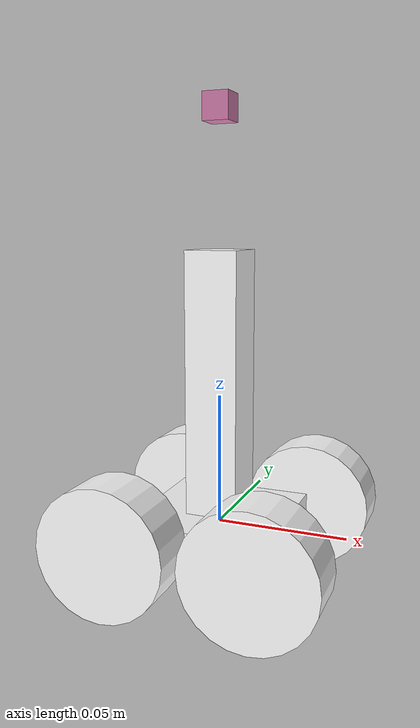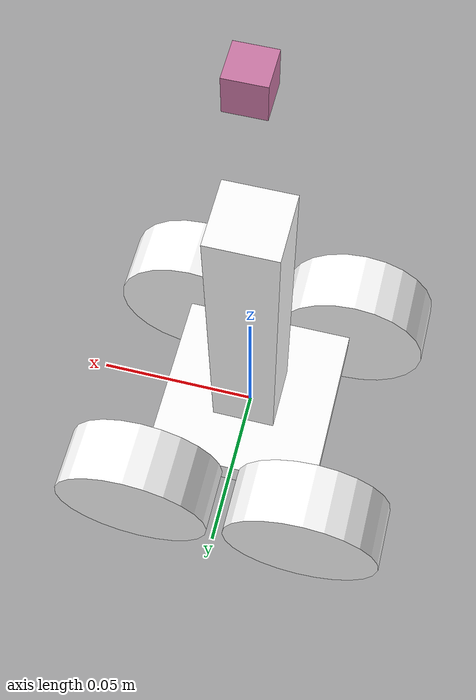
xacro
<?xml version="1.0"?>
<robot name="test_bot_2" xmlns:xacro="http://ros.org/wiki/xacro">

  <xacro:property name="base_width" value="0.055" />
  <xacro:property name="base_height" value="0.01" />
  <xacro:property name="wheel_dia" value="0.025" />
  <xacro:property name="wheel_thick" value="0.02"/>
  <xacro:property name="slider_base_height" value="0.1"/>
  <xacro:property name="slider_base_width" value="0.02"/>
  <xacro:property name="slider_height" value="0.15"/>
  <xacro:property name="slider_width" value="0.01"/>
  <xacro:property name="camera_width" value="0.01"/>
  <xacro:property name="slide_ulim" value="0.025"/>
  <xacro:property name="slide_llim" value="-0.025"/>
  <xacro:property name="cam_llim" value="-0.436332"/>
  <xacro:property name="cam_ulim" value="0.436332"/>

  <material name="white">
      <color rgba="1 1 1 1"/>
  </material>

  <xacro:macro name="default_inertial" params="mass inertia">
    <inertial>
      <mass value="${mass}" />
      <inertia ixx="${inertia}" ixy="0.0" ixz="0.0" iyy="${inertia}" iyz="0.0" izz="${inertia}" />
    </inertial>
  </xacro:macro>

  <xacro:macro name="wheel" params="prefix reflect1 reflect2 reflect3">
      <link name="${prefix}_wheel">
          <visual>
              <geometry>
                  <cylinder length="${wheel_thick}" radius="${wheel_dia}"/>
              </geometry>
              <origin xyz="${reflect3*wheel_thick/2} 0 0" rpy="0 1.57075 0"/>
              <material name="white"/>
          </visual>
          <collision>
              <geometry>
                  <cylinder length="${wheel_thick}" radius="${wheel_dia}"/>
              </geometry>
              <origin xyz="${reflect3*wheel_thick/2} 0 0" rpy="0 1.57075 0"/>
          </collision>
          <inertial>
            <mass value="1" />
            <inertia ixx="0.0001" ixy="0.0" ixz="0.0" iyy=".0001" iyz="0.0" izz=".00001" />
          </inertial>
      </link>

      <joint name="base_to_${prefix}_wheel" type="continuous">
          <parent link="base_frame"/>
          <child link="${prefix}_wheel"/>
          <origin xyz="${reflect1*base_width/2} ${reflect2*base_width/2} 0" rpy="0.0 0.0 1.57079632679"/>
      </joint>
  </xacro:macro>

  <link name="base_frame">
      <visual>
          <geometry>
              <box size="${base_width} ${base_width} ${base_height}"/>
          </geometry>
          <material name="white"/>
      </visual>
      <collision>
          <geometry>
              <box size="${base_width} ${base_width} ${base_height}"/>
          </geometry>
      </collision>
  </link>

  <xacro:wheel prefix="0" reflect1="1" reflect2="1" reflect3="1"/>
  <xacro:wheel prefix="1" reflect1="-1" reflect2="1" reflect3="1"/>
  <xacro:wheel prefix="2" reflect1="1" reflect2="-1" reflect3="-1"/>
  <xacro:wheel prefix="3" reflect1="-1" reflect2="-1" reflect3="-1"/>

  <link name = "slider_base">
      <visual>
          <geometry>
              <box size="${slider_base_width} ${slider_base_width} ${slider_base_height}"/>
          </geometry>
          <origin xyz="0.0 0.0 ${slider_base_height/2}"/>
          <material name="white"/>
      </visual>
      <collision>
          <geometry>
              <box size="${slider_base_width} ${slider_base_width} ${slider_base_height}"/>
          </geometry>
          <origin xyz="0.0 0.0 ${slider_base_height/2}"/>
      </collision>
      <inertial>
        <mass value="1" />
        <inertia ixx="0.001" ixy="0.0" ixz="0.0" iyy="0.001" iyz="0.0" izz="0.001" />
      </inertial>
  </link>

  <joint name="base_slider_base" type="fixed">
      <parent link="base_frame"/>
      <child link="slider_base"/>
      <origin xyz="0.0 0.0 ${base_height/2}"/>
  </joint>

  <link name = "camera_mount">
        <visual>
            <geometry>
                <box size="${camera_width} ${camera_width} ${camera_width}"/>
            </geometry>
        </visual>
        <collision>
            <geometry>
                <box size="${camera_width} ${camera_width} ${camera_width}"/>
            </geometry>
        </collision>
    <inertial>
        <mass value="0.00001" />
        <inertia ixx="0.0000000001" ixy="0.0" ixz="0.000000000001000" iyy="0.0000" iyz="0.0" izz="0.0000000001" />
    </inertial>
    </link>

    <joint name="camera_slider" type="revolute">
        <parent link="slider_base"/>
        <child link="camera_mount"/>
        <origin xyz="0.0 0.0 ${1.5*slider_base_height}" rpy="0.0 0.0 0.0"/> <!-- pi/2 -->
        <limit effort="15.0" lower="${cam_llim}" upper="${cam_ulim}" velocity="100"/>
        <axis xyz="0 -1 0"/>
    </joint>

    <transmission name="head_rotation">
        <type>transmission_interface/SimpleTransmission</type>
        <actuator name="$camera_motor">
          <mechanicalReduction>1</mechanicalReduction>
        </actuator>
        <joint name="camera_slider">
          <hardwareInterface>hardware_interface/VelocityJointInterface</hardwareInterface>
        </joint>
      </transmission>

      <xacro:macro name="wheel_trans" params="prefix">
        <transmission name="${prefix}_wheel_trans">
          <type>transmission_interface/SimpleTransmission</type>
          <actuator name="${prefix}_wheel_motor">
            <mechanicalReduction>1</mechanicalReduction>
          </actuator>
          <joint name="base_to_${prefix}_wheel">
            <hardwareInterface>hardware_interface/VelocityJointInterface</hardwareInterface>
          </joint>
        </transmission>
        <gazebo reference="${prefix}_wheel">
          <mu1 value="300.0"/>
          <mu2 value="100.0"/>
          <kp value="1000000.0" />
          <kd value="1000.0" />
          <material>Gazebo/Grey</material>
        </gazebo>
      </xacro:macro>

      <xacro:wheel_trans prefix="0"/>
      <xacro:wheel_trans prefix="1"/>
      <xacro:wheel_trans prefix="2"/>
      <xacro:wheel_trans prefix="3"/>

      <gazebo>
          <plugin name="gazebo_ros_control" filename="libgazebo_ros_control.so">
              <robotNamespace>/</robotNamespace>
          </plugin>
      </gazebo>

      <link name = "imu_link"/>

      <joint name="imu_mount" type="fixed">
        <parent link="camera_mount"/>
        <child link="imu_link"/>
        <origin xyz="0.0 0.0 0.0" rpy="0.0 0.0 0.0"/>
      </joint>

      <gazebo>
        <plugin name="imu_plugin" filename="libgazebo_ros_imu.so">
          <alwaysOn>true</alwaysOn>
          <bodyName>imu_link</bodyName>
          <topicName>imu</topicName>
          <serviceName>imu_service</serviceName>
          <gaussianNoise>0.0</gaussianNoise>
          <updateRate>250.0</updateRate>
        </plugin>
      </gazebo>
</robot>
